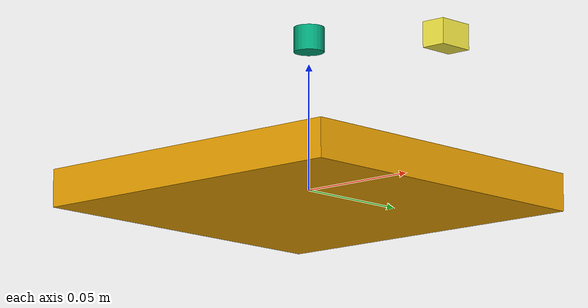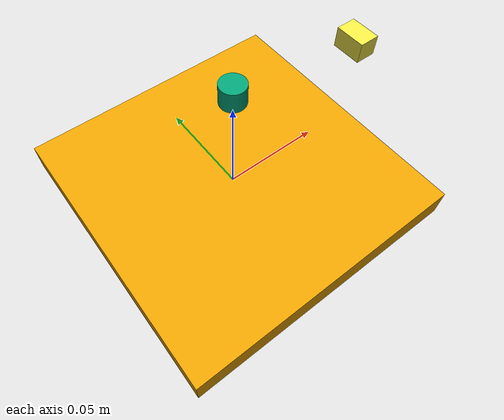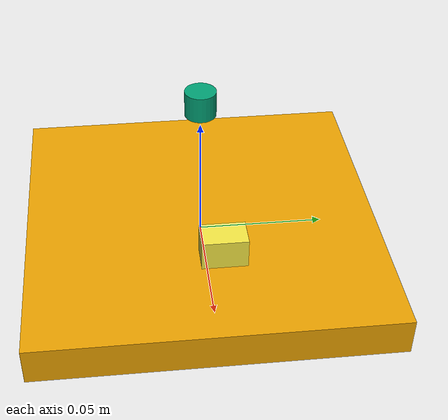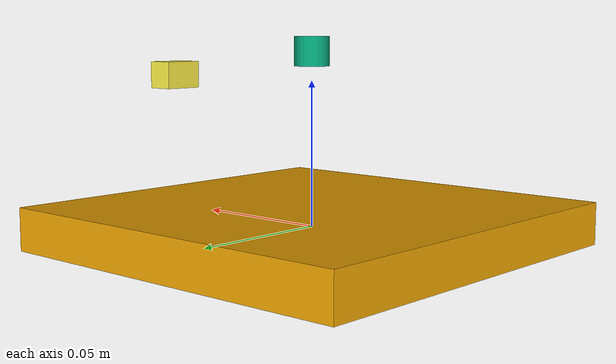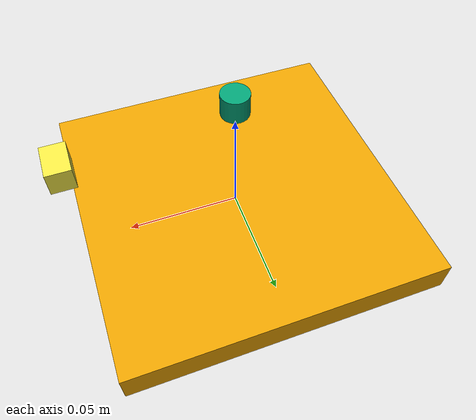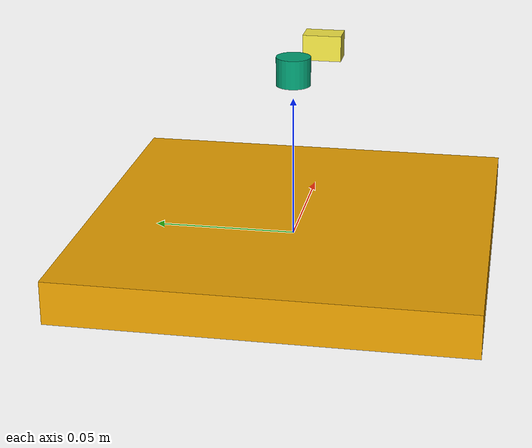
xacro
<?xml version="1.0"?>
<robot name="nav_omni4" xmlns:xacro="http://ros.org/wiki/xacro">
    <link name="base_link">
        <visual>
            <geometry>
                <box size="0.14 0.14 0.015"/>
            </geometry>
        </visual>
    </link>

    <link name="base_footprint"/>

    <joint name="base_joint" type="fixed">
        <parent link="base_link"/>
        <child link="base_footprint"/>
        <origin xyz="0 0 -0.09" rpy="0 0 0"/>
    </joint>

    <link name="lidar_link">
        <visual>
            <geometry>
                <cylinder radius="0.006" length="0.01"/>
            </geometry>
        </visual>
    </link>

    <joint name="lidar_joint" type="fixed">
        <parent link="base_link"/>
        <child link="lidar_link"/>
        <origin xyz="0 0 0.06" rpy="0 0 0"/>
    </joint>

    <link name="camera_link">
        <visual>
            <geometry>
                <box size="0.01 0.015 0.01"/>
            </geometry>
        </visual>
    </link>

    <link name="camera_depth_frame"/>

    <joint name="camera_depth_joint" type="fixed">
		<origin xyz="0 0 0" rpy="-${pi/2} 0 -${pi/2}"/>
        <parent link="camera_link"/>
        <child link="camera_depth_frame"/>
    </joint>

    <joint name="camera_joint" type="fixed">
        <parent link="base_link"/>
        <child link="camera_link"/>
        <origin xyz="0.07 0 0.05" rpy="0 0 0"/>
    </joint>
</robot>
